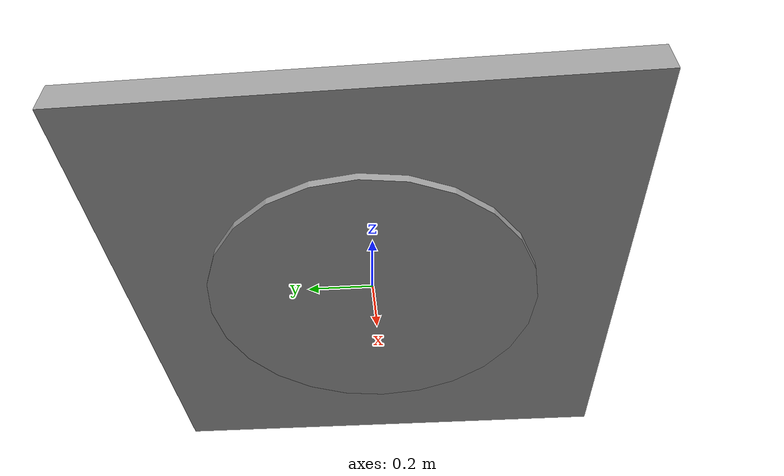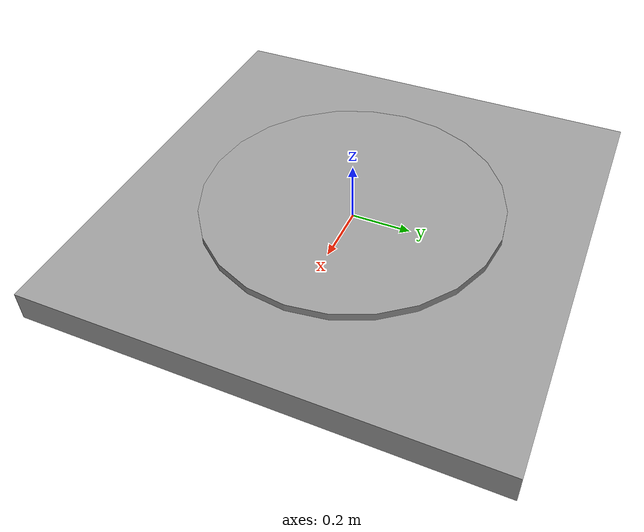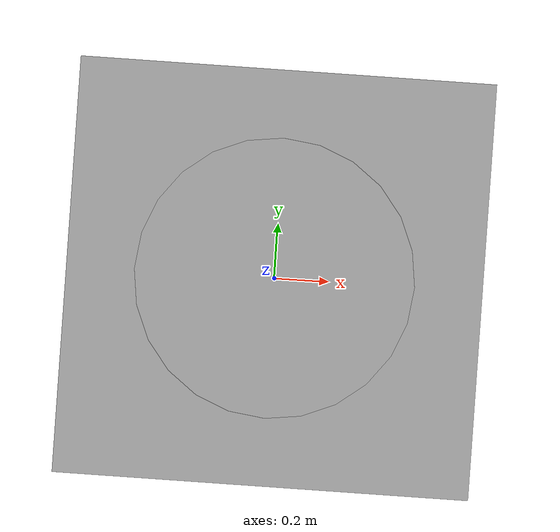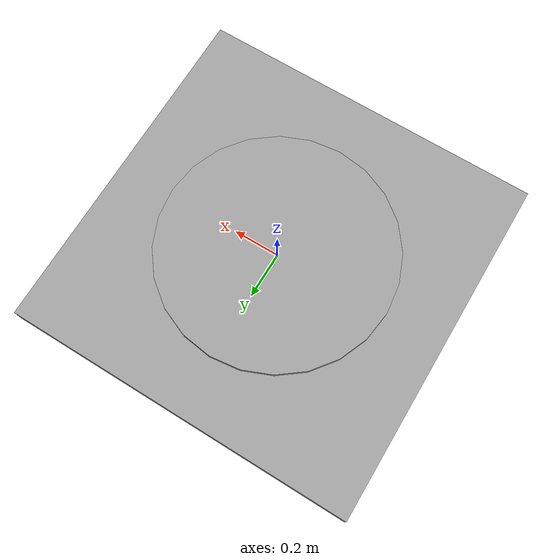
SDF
<?xml version="1.0" ?>
<sdf version='1.7'>
  <model name='drone_station'>
    <link name='link_0'>
      <inertial>
        <mass>1</mass>
        <inertia>
          <ixx>0.166667</ixx>
          <ixy>0</ixy>
          <ixz>0</ixz>
          <iyy>0.166667</iyy>
          <iyz>0</iyz>
          <izz>0.166667</izz>
        </inertia>
        <pose>0 0 0 0 -0 0</pose>
      </inertial>
      <pose>0 0 0 0 -0 0</pose>
      <gravity>1</gravity>
      <self_collide>0</self_collide>
      <kinematic>0</kinematic>
      <enable_wind>0</enable_wind>
      <visual name='visual'>
        <pose>0 0 0 0 -0 0</pose>
        <geometry>
          <box>
            <size>1.5 1.5 0.1</size>
          </box>
        </geometry>
        <material>
          <lighting>1</lighting>
          <script>
            <uri>file://media/materials/scripts/gazebo.material</uri>
            <name>Gazebo/Grey</name>
          </script>
          <shader type='pixel'>
            <normal_map>__default__</normal_map>
          </shader>
          <ambient>0.2 0.2 0.2 1</ambient>
          <diffuse>0.2 0.2 0.2 1</diffuse>
          <specular>0.01 0.01 0.01 1</specular>
          <emissive>0 0 0 1</emissive>
        </material>
        <transparency>0</transparency>
        <cast_shadows>false</cast_shadows>
      </visual>
      <collision name='collision'>
        <laser_retro>0</laser_retro>
        <max_contacts>10</max_contacts>
        <pose>0 0 0 0 -0 0</pose>
        <geometry>
          <box>
            <size>1.5 1.5 0.1</size>
          </box>
        </geometry>
        <surface>
            <contact>
              <ode/>
            </contact>
            <bounce/>
            <friction>
              <torsional>
                <ode/>
              </torsional>
              <ode/>
            </friction>
          </surface>
      </collision>
    </link>
    <link name='link_1'>
      <inertial>
        <mass>1</mass>
        <inertia>
          <ixx>0.145833</ixx>
          <ixy>0</ixy>
          <ixz>0</ixz>
          <iyy>0.145833</iyy>
          <iyz>0</iyz>
          <izz>0.125</izz>
        </inertia>
        <pose>0 0 0 0 -0 0</pose>
      </inertial>
      <pose>0 0 0 0 -0 0</pose>
      <gravity>1</gravity>
      <self_collide>0</self_collide>
      <kinematic>0</kinematic>
      <enable_wind>0</enable_wind>
      <visual name='visual'>
        <pose>0 0 0 0 -0 0</pose>
        <geometry>
          <cylinder>
            <radius>0.5</radius>
            <length>0.15</length>
          </cylinder>
        </geometry>
        <material>
          <lighting>1</lighting>
          <script>
            <uri>file://media/materials/scripts/gazebo.material</uri>
            <name>Gazebo/Grey</name>
          </script>
          <shader type='pixel'>
            <normal_map>__default__</normal_map>
          </shader>
          <ambient>0.7 0.7 0.7 1</ambient>
          <diffuse>0.7 0.7 0.7 1</diffuse>
          <specular>0.01 0.01 0.01 1</specular>
          <emissive>0 0 0 1</emissive>
        </material>
        <transparency>0</transparency>
        <cast_shadows>1</cast_shadows>
      </visual>
      <collision name='collision'>
        <laser_retro>0</laser_retro>
        <max_contacts>10</max_contacts>
        <pose>0 0 0 0 -0 0</pose>
        <geometry>
          <cylinder>
            <radius>0.5</radius>
            <length>0.15</length>
          </cylinder>
        </geometry>
        <surface>
            <contact>
              <ode/>
            </contact>
            <bounce/>
            <friction>
              <torsional>
                <ode/>
              </torsional>
              <ode/>
            </friction>
          </surface>
      </collision>
    </link>
    <static>1</static>
    <allow_auto_disable>1</allow_auto_disable>
  </model>
</sdf>
